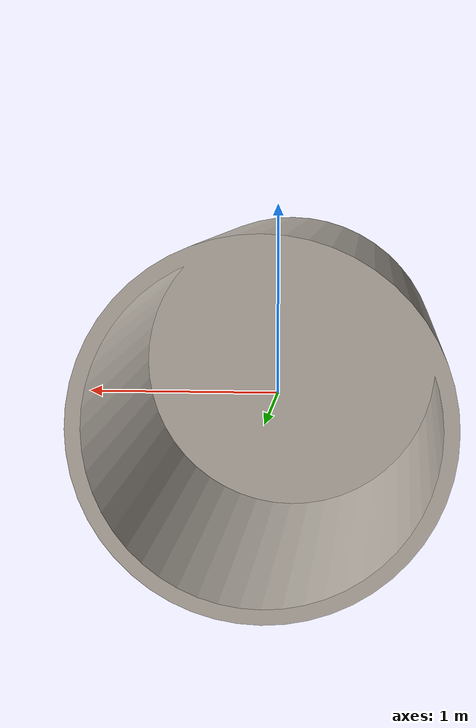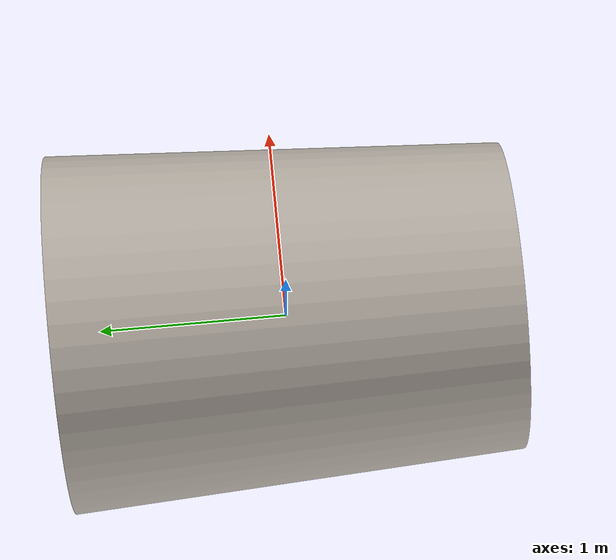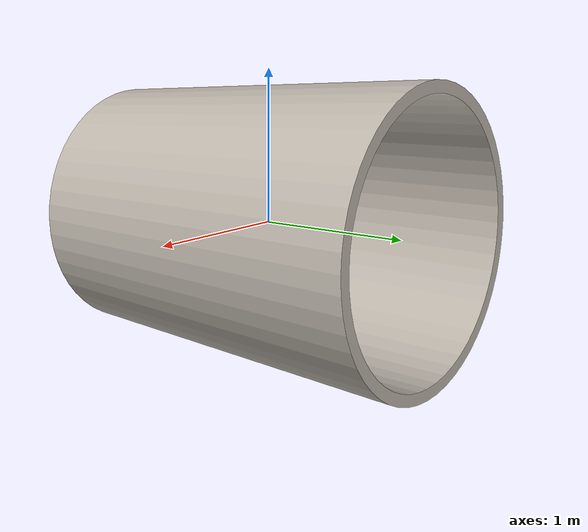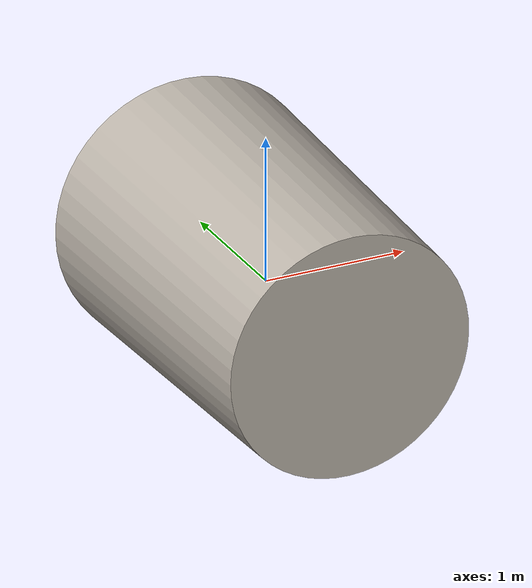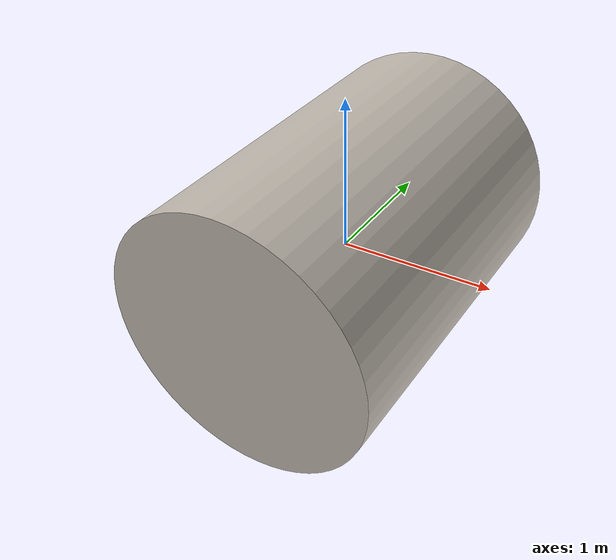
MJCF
<mujoco model="bin">
  <default>
    <default class="visual">
      <geom group="2" type="mesh" contype="0" conaffinity="0"/>
    </default>
    <default class="collision">
      <geom group="3" type="mesh"/>
    </default>
  </default>
  <asset>
    <texture type="2d" name="Material.001" file="Material.001.png"/>
    <material name="Material.001" texture="Material.001" specular="0.5" shininess="0.5"/>
    <mesh name="bin" file="bin_0.obj"/>
    <mesh file="bin_collision_0.obj"/>
    <mesh file="bin_collision_1.obj"/>
    <mesh file="bin_collision_2.obj"/>
    <mesh file="bin_collision_3.obj"/>
    <mesh file="bin_collision_4.obj"/>
    <mesh file="bin_collision_5.obj"/>
    <mesh file="bin_collision_6.obj"/>
    <mesh file="bin_collision_7.obj"/>
    <mesh file="bin_collision_8.obj"/>
    <mesh file="bin_collision_9.obj"/>
    <mesh file="bin_collision_10.obj"/>
    <mesh file="bin_collision_11.obj"/>
    <mesh file="bin_collision_12.obj"/>
    <mesh file="bin_collision_13.obj"/>
    <mesh file="bin_collision_14.obj"/>
    <mesh file="bin_collision_15.obj"/>
    <mesh file="bin_collision_16.obj"/>
    <mesh file="bin_collision_17.obj"/>
  </asset>
  <worldbody>
    <body name="bin">
      <freejoint/>
      <geom material="Material.001" mesh="bin" class="visual"/>
      <geom mesh="bin_collision_0" rgba="0.5656883503988486 0.11250936307537307 0.5581851554860262 1" class="collision"/>
      <geom mesh="bin_collision_1" rgba="0.5860409715766185 0.6564956739943022 0.1791491181371545 1" class="collision"/>
      <geom mesh="bin_collision_2" rgba="0.5002140867215783 0.5572480630139951 0.5924120710659968 1" class="collision"/>
      <geom mesh="bin_collision_3" rgba="0.1995679167463621 0.22770707893569542 0.013270077059705954 1" class="collision"/>
      <geom mesh="bin_collision_4" rgba="0.6236419864690763 0.9288387486241978 0.8689541363880593 1" class="collision"/>
      <geom mesh="bin_collision_5" rgba="0.47626569814388764 0.212070288304262 0.46014263873888916 1" class="collision"/>
      <geom mesh="bin_collision_6" rgba="0.6736496132621116 0.3805371033334769 0.32260282327390577 1" class="collision"/>
      <geom mesh="bin_collision_7" rgba="0.8176373906829766 0.12693688868037034 0.2889806724678615 1" class="collision"/>
      <geom mesh="bin_collision_8" rgba="0.49408272307867485 0.7033232004716612 0.14369687318346092 1" class="collision"/>
      <geom mesh="bin_collision_9" rgba="0.26914901747654063 0.02923155756729412 0.7285023557282461 1" class="collision"/>
      <geom mesh="bin_collision_10" rgba="0.9298450186296169 0.10897536287523268 0.5339485008899437 1" class="collision"/>
      <geom mesh="bin_collision_11" rgba="0.5462123059798306 0.809050691629081 0.4511538502153206 1" class="collision"/>
      <geom mesh="bin_collision_12" rgba="0.5328386039662832 0.9972994950728357 0.5927826799966235 1" class="collision"/>
      <geom mesh="bin_collision_13" rgba="0.19465366742790524 0.9218905363018821 0.2837712535667377 1" class="collision"/>
      <geom mesh="bin_collision_14" rgba="0.864748232398844 0.6700816530361328 0.8082797851728583 1" class="collision"/>
      <geom mesh="bin_collision_15" rgba="0.6455027716649001 0.09141298711254053 0.11707035133939891 1" class="collision"/>
      <geom mesh="bin_collision_16" rgba="0.7148353406462048 0.3414723618637244 0.8036983239255856 1" class="collision"/>
      <geom mesh="bin_collision_17" rgba="0.40295595259673433 0.8311604535811642 0.9315085680782417 1" class="collision"/>
    </body>
  </worldbody>
</mujoco>
